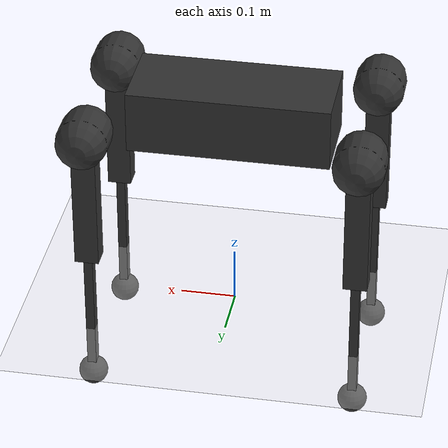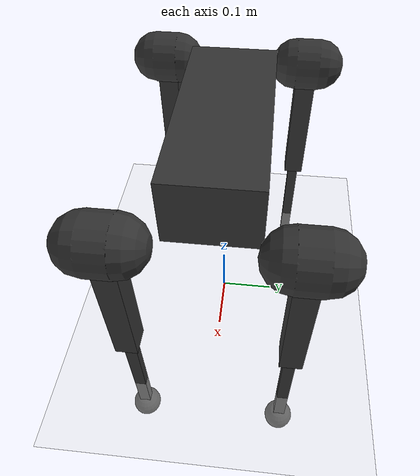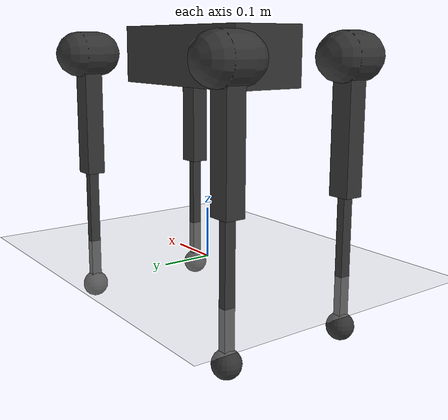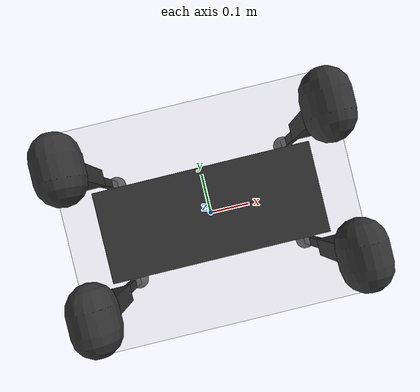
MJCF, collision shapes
<mujoco model="aliengo scene">
      <include file="aliengo.xml"/>

      <statistic center="0 0 0.1" extent="0.8"/>

      <visual>
            <headlight diffuse="0.4 0.4 0.4" ambient="0.25 0.25 0.25" specular="0.25 0.25 0.25"/>
            <rgba haze="0.99 0.99 0.99 1"/>
            <global azimuth="-130" elevation="-20"/>
      </visual>
      <asset>
            <texture
                  type="skybox"
                  builtin="gradient"
                  rgb1="0.99 0.99 0.99"
                  rgb2="0.99 0.99 0.99"
                  width="512"
                  height="3072"
            />
            <texture
                  type="2d"
                  name="groundplane"
                  builtin="checker"
                  mark="edge"
                  rgb1="0.93 0.93 0.93"
                  rgb2="0.93 0.93 0.93"
                  markrgb="0 0 0"
                  width="250"
                  height="250"
            />
            <material name="groundplane" texture="groundplane" texuniform="true" texrepeat="5 5" reflectance="0.0"/>

      </asset>

      <worldbody>
            <light pos="0 0 5.0" dir="0 0 -1" directional="true" castshadow="false"/>

            <geom name="floor" size="0 0 0.05" type="plane" material="groundplane"/>
      </worldbody>
</mujoco>

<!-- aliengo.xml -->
<mujoco model="aliengo_description">
    <compiler angle="radian" autolimits="true"/>

    <default>
        <default class="visual">
            <geom type="mesh" contype="0" conaffinity="0" group="2"/>
        </default>
        <default class="collision">
            <geom group="3" rgba="0.2 0.2 0.2 0.5"/>
        </default>

        <default class="hip">
            <motor ctrlrange="-35.278 35.278"/>
        </default>
        <default class="thigh">
            <motor ctrlrange="-35.278 35.278"/>
        </default>
        <default class="calf">
            <motor ctrlrange="-44.4 44.4"/>
        </default>

    </default>

    <asset>
        <mesh name="base" file="assets/base.stl"/>
        <mesh name="hip" file="assets/hip.stl"/>
        <mesh name="thigh_mirror" file="assets/thigh_mirror.stl"/>
        <mesh name="calf" file="assets/calf.stl"/>
        <mesh name="thigh" file="assets/thigh.stl"/>
    </asset>

    <worldbody>

        <body name="base" pos="0 0 0.4">
            <inertial pos="0.00846406 0.00404455 -0.000762916" quat="-3.12625e-05 0.708321 0.00247254 0.705886"
                      mass="13.042" diaginertia="0.174706 0.161175 0.033357"/>
            <freejoint/>

            <!-- base visual mesh and collision -->
            <geom type="mesh" class="visual" rgba="0.2 0.2 0.2 1" mesh="base"/>
            <geom type="box" class="collision" size="0.18 0.075 0.056"/>

            <!-- modify this to add payload -->

            <!-- imu and camera -->
            <site name="imu" pos="0 0 0"/>
            <camera name="robotcam" pos="0.31 -0.005 0.00292751" quat="0.4 0.4 -0.4 -0.4"/>

            <!-- FL leg -->
            <body name="FL_hip" pos="0.2399 0.051 0">
                <inertial pos="-0.022191 0.015144 -1.5e-05" quat="-0.0135493 0.706835 0.0117635 0.707151" mass="1.993"
                          diaginertia="0.00558695 0.00491009 0.00290132"/>
                <joint name="FL_hip_joint" pos="0 0 0" axis="1 0 0" limited="true" range="-1.22173 1.22173" armature="0.0062" frictionloss="0.4168" damping="0.1744"/>

                <!-- FL_hip visual mesh and collision -->
                <geom type="mesh" class="visual" rgba="0.2 0.2 0.2 1" mesh="hip"/>
                <geom type="capsule" class="collision" size="0.046 0.0209" pos="0 0.083 0"
                      quat="0.707107 0.707107 0 0"/>

                <body name="FL_thigh" pos="0 0.083 0">
                    <inertial pos="-0.005607 -0.003877 -0.048199" quat="0.717987 -0.031246 -0.0335669 0.694544"
                              mass="0.639" diaginertia="0.0058474 0.00571186 0.000324584"/>
                    <joint name="FL_thigh_joint" pos="0 0 0" axis="0 1 0" armature="0.0172" frictionloss="0.3451" damping="0.1396"/>

                    <!-- FL_thigh visual mesh and collision -->
                    <geom type="mesh" class="visual" rgba="0.2 0.2 0.2 1" mesh="thigh"/>
                    <geom type="box" class="collision" size="0.125 0.0187 0.0215" pos="0 0 -0.125"
                          quat="0.707107 0 0.707107 0"/>

                    <body name="FL_calf" pos="0 0 -0.25">
                        <inertial pos="0.00215606 4.88427e-05 -0.166671" quat="0.707462 0.00517582 0.00535172 0.706712"
                                  mass="0.267" diaginertia="0.00690975 0.00689712 5.4885e-05"/>
                        <joint name="FL_calf_joint" pos="0 0 0" axis="0 1 0" limited="true" range="-2.77507 -0.645772" armature="0.0269" frictionloss="0.4909" damping="0.1588"/>

                        <!-- FL_calf visual mesh and collision -->
                        <geom type="mesh" class="visual" rgba="0 0 0 1" mesh="calf"/>
                        <geom type="box" class="collision" size="0.125 0.0104 0.008" pos="0 0 -0.125"
                              quat="0.707107 0 0.707107 0"/>

                        <!-- FL_foot only collision -->
                        <!--geom name="FL" class="collision" size="0.0265" pos="0 0 -0.25"/-->

                        <body name="FL_foot" pos="0 0 -0.25">
                            <inertial pos="0 0 0" mass="0.02" diaginertia="5.618e-06 5.618e-06 5.618e-06"/>
                            <!-- FL_foot only collision -->
                            <geom name="FL" class="collision" size="0.0265"/>
                        </body>

                    </body>
                </body>
            </body>

            <!-- FR leg -->
            <body name="FR_hip" pos="0.2399 -0.051 0">
                <inertial pos="-0.022191 -0.015144 -1.5e-05" quat="0.0135493 0.706835 -0.0117635 0.707151" mass="1.993"
                          diaginertia="0.00558695 0.00491009 0.00290132"/>
                <joint name="FR_hip_joint" pos="0 0 0" axis="1 0 0" limited="true" range="-1.22173 1.22173" armature="0.0096" frictionloss="0.4756" damping="0.1"/>

                <!-- FR_hip visual mesh and collision -->
                <geom type="mesh" mesh="hip" class="visual" quat="0 1 0 0" rgba="0.2 0.2 0.2 1"/>
                <geom type="capsule" class="collision" size="0.046 0.0209" pos="0 -0.083 0"
                      quat="0.707107 0.707107 0 0"/>

                <body name="FR_thigh" pos="0 -0.083 0">
                    <inertial pos="-0.005607 0.003877 -0.048199" quat="0.694544 -0.0335669 -0.031246 0.717987"
                              mass="0.639" diaginertia="0.0058474 0.00571186 0.000324584"/>
                    <joint name="FR_thigh_joint" pos="0 0 0" axis="0 1 0" armature="0.0126" frictionloss="0.2558" damping="0.2542"/>

                    <!-- FR_thigh visual mesh and collision -->
                    <geom type="mesh" mesh="thigh_mirror" class="visual" rgba="0.2 0.2 0.2 1"/>
                    <geom type="box" class="collision" size="0.125 0.0187 0.0215" pos="0 0 -0.125"
                          quat="0.707107 0 0.707107 0"/>

                    <body name="FR_calf" pos="0 0 -0.25">
                        <inertial pos="0.00215606 4.88427e-05 -0.166671" quat="0.707462 0.00517582 0.00535172 0.706712"
                                  mass="0.267" diaginertia="0.00690975 0.00689712 5.4885e-05"/>
                        <joint name="FR_calf_joint" pos="0 0 0" axis="0 1 0" limited="true" range="-2.77507 -0.645772" armature="0.0170" frictionloss="0.1965" damping="0.3150"/>

                        <!-- FR_calf visual mesh and collision -->
                        <geom type="mesh" mesh="calf" class="visual" rgba="0 0 0 1"/>
                        <geom type="box" class="collision" size="0.125 0.0104 0.008" pos="0 0 -0.125"
                              quat="0.707107 0 0.707107 0"/>

                        <!-- FR_foot only collision -->
                        <!--geom name="FR" class="collision" size="0.0265" pos="0 0 -0.25"/-->

                        <body name="FR_foot" pos="0 0 -0.25">
                            <inertial pos="0 0 0" mass="0.02" diaginertia="5.618e-06 5.618e-06 5.618e-06"/>
                            <!-- FR_foot only collision -->
                            <geom name="FR" class="collision" size="0.0265"/>
                        </body>

                    </body>
                </body>
            </body>

            <!-- RL leg -->
            <body name="RL_hip" pos="-0.2399 0.051 0">
                <inertial pos="0.022191 0.015144 -1.5e-05" quat="0.0117635 0.707151 -0.0135493 0.706835" mass="1.993"
                          diaginertia="0.00558695 0.00491009 0.00290132"/>
                <joint name="RL_hip_joint" pos="0 0 0" axis="1 0 0" limited="true" range="-1.22173 1.22173" armature="0.0097" frictionloss="0.3773" damping="0.1832"/>

                <!-- RL_hip visual mesh and collision -->
                <geom type="mesh" class="visual" quat="0 0 1 0" rgba="0.2 0.2 0.2 1" mesh="hip"/>
                <geom type="capsule" class="collision" size="0.046 0.0209" pos="0 0.083 0"
                      quat="0.707107 0.707107 0 0"/>

                <body name="RL_thigh" pos="0 0.083 0">
                    <inertial pos="-0.005607 -0.003877 -0.048199" quat="0.717987 -0.031246 -0.0335669 0.694544"
                              mass="0.639" diaginertia="0.0058474 0.00571186 0.000324584"/>
                    <joint name="RL_thigh_joint" pos="0 0 0" axis="0 1 0" armature="0.0160" frictionloss="0.2892" damping="0.1884"/>

                    <!-- RL_thigh visual mesh and collision -->
                    <geom type="mesh" class="visual" rgba="0.2 0.2 0.2 1" mesh="thigh"/>
                    <geom type="box" class="collision" size="0.125 0.0187 0.0215" pos="0 0 -0.125"
                          quat="0.707107 0 0.707107 0"/>

                    <body name="RL_calf" pos="0 0 -0.25">
                        <inertial pos="0.00215606 4.88427e-05 -0.166671" quat="0.707462 0.00517582 0.00535172 0.706712"
                                  mass="0.267" diaginertia="0.00690975 0.00689712 5.4885e-05"/>
                        <joint name="RL_calf_joint" pos="0 0 0" axis="0 1 0" limited="true" range="-2.77507 -0.645772" armature="0.0233" frictionloss="0.3549" damping="0.2531"/>

                        <!-- RL_calf visual mesh and collision -->
                        <geom type="mesh" class="visual" rgba="0 0 0 1" mesh="calf"/>
                        <geom type="box" class="collision" size="0.125 0.0104 0.008" pos="0 0 -0.125"
                              quat="0.707107 0 0.707107 0"/>

                        <!-- RL_foot only collision -->
                        <!--geom name="RL" class="collision" size="0.0265" pos="0 0 -0.25"/-->

                        <body name="RL_foot" pos="0 0 -0.25">
                            <inertial pos="0 0 0" mass="0.02" diaginertia="5.618e-06 5.618e-06 5.618e-06"/>
                            <!-- RL_foot only collision -->
                            <geom name="RL" class="collision" size="0.0265"/>
                        </body>

                    </body>
                </body>
            </body>

            <!-- RR leg -->
            <body name="RR_hip" pos="-0.2399 -0.051 0">
                <inertial pos="0.022191 -0.015144 -1.5e-05" quat="-0.0117635 0.707151 0.0135493 0.706835" mass="1.993"
                          diaginertia="0.00558695 0.00491009 0.00290132"/>
                <joint name="RR_hip_joint" pos="0 0 0" axis="1 0 0" limited="true" range="-1.22173 1.22173" armature="0.0119" frictionloss="0.6511" damping="0.2535"/>

                <!-- RR_hip visual mesh and collision -->
                <geom type="mesh" class="visual" quat="0 0 0 -1" rgba="0.2 0.2 0.2 1" mesh="hip"/>
                <geom type="capsule" class="collision" size="0.046 0.0209" pos="0 -0.083 0"
                      quat="0.707107 0.707107 0 0"/>

                <body name="RR_thigh" pos="0 -0.083 0">
                    <inertial pos="-0.005607 0.003877 -0.048199" quat="0.694544 -0.0335669 -0.031246 0.717987"
                              mass="0.639" diaginertia="0.0058474 0.00571186 0.000324584"/>
                    <joint name="RR_thigh_joint" pos="0 0 0" axis="0 1 0" armature="0.0150" frictionloss="0.2998" damping="0.2233"/>

                    <!-- RR_thigh visual mesh and collision -->
                    <geom type="mesh" class="visual" rgba="0.2 0.2 0.2 1" mesh="thigh_mirror"/>
                    <geom type="box" class="collision" size="0.125 0.0187 0.0215" pos="0 0 -0.125"
                          quat="0.707107 0 0.707107 0"/>

                    <body name="RR_calf" pos="0 0 -0.25">
                        <inertial pos="0.00215606 4.88427e-05 -0.166671" quat="0.707462 0.00517582 0.00535172 0.706712"
                                  mass="0.267" diaginertia="0.00690975 0.00689712 5.4885e-05"/>
                        <joint name="RR_calf_joint" pos="0 0 0" axis="0 1 0" limited="true" range="-2.77507 -0.645772" armature="0.0249" frictionloss="0.4363" damping="0.3365"/>

                        <!-- RR_calf visual mesh and collision -->
                        <geom type="mesh" class="visual" rgba="0 0 0 1" mesh="calf"/>
                        <geom type="box" class="collision" size="0.125 0.0104 0.008" pos="0 0 -0.125"
                              quat="0.707107 0 0.707107 0"/>

                        <!-- RR_foot only collision -->
                        <!--geom name="RR" class="collision" size="0.0265" pos="0 0 -0.25"/-->

                        <body name="RR_foot" pos="0 0 -0.25">
                            <inertial pos="0 0 0" mass="0.02" diaginertia="5.618e-06 5.618e-06 5.618e-06"/>
                            <!-- RR_foot only collision -->
                            <geom name="RR" class="collision" size="0.0265"/>
                        </body>

                    </body>
                </body>
            </body>
        </body>
    </worldbody>

    <actuator>
        <motor name="FL_hip"   class="hip"    gear="1" joint="FL_hip_joint"/>
        <motor name="FL_thigh" class="thigh"  gear="1" joint="FL_thigh_joint"/>
        <motor name="FL_calf"  class="calf"   gear="1" joint="FL_calf_joint"/>
        <motor name="FR_hip"   class="hip"    gear="1" joint="FR_hip_joint"/>
        <motor name="FR_thigh" class="thigh"  gear="1" joint="FR_thigh_joint"/>
        <motor name="FR_calf"  class="calf"   gear="1" joint="FR_calf_joint"/>
        <motor name="RL_hip"   class="hip"    gear="1" joint="RL_hip_joint"/>
        <motor name="RL_thigh" class="thigh"  gear="1" joint="RL_thigh_joint"/>
        <motor name="RL_calf"  class="calf"   gear="1" joint="RL_calf_joint"/>
        <motor name="RR_hip"   class="hip"    gear="1" joint="RR_hip_joint"/>
        <motor name="RR_thigh" class="thigh"  gear="1" joint="RR_thigh_joint"/>
        <motor name="RR_calf"  class="calf"   gear="1" joint="RR_calf_joint" />
    </actuator>

    <sensor>
        <accelerometer name="imu_acc" site="imu"/>
        <gyro name="imu_gyro" site="imu"/>
        <framepos name="imu_pos" objtype="site" objname="imu"/>
        <framequat name="imu_quat" objtype="site" objname="imu"/>

        <jointpos name="FL_hip_joint_pos" joint="FL_hip_joint"/>
        <jointpos name="FL_thigh_joint_pos" joint="FL_thigh_joint"/>
        <jointpos name="FL_calf_joint_pos" joint="FL_calf_joint"/>
        <jointpos name="FR_hip_joint_pos" joint="FR_hip_joint"/>
        <jointpos name="FR_thigh_joint_pos" joint="FR_thigh_joint"/>
        <jointpos name="FR_calf_joint_pos" joint="FR_calf_joint"/>
        <jointpos name="RL_hip_joint_pos" joint="RL_hip_joint"/>
        <jointpos name="RL_thigh_joint_pos" joint="RL_thigh_joint"/>
        <jointpos name="RL_calf_joint_pos" joint="RL_calf_joint"/>
        <jointpos name="RR_hip_joint_pos" joint="RR_hip_joint"/>
        <jointpos name="RR_thigh_joint_pos" joint="RR_thigh_joint"/>
        <jointpos name="RR_calf_joint_pos" joint="RR_calf_joint"/>
    </sensor>

    <keyframe>
        <key name="home" qpos="0 0 0.35 1 0 0 0 0 0.9 -1.8 0 0.9 -1.8 0 0.9 -1.8 0 0.9 -1.8"/>
        <key name="down" qpos="0 0 0.05 1 0 0 0 0.0 1.21 -2.794 0.0 1.21 -2.794 0.0 1.21 -2.794 0.0 1.21 -2.794"/>
    </keyframe>
</mujoco>
